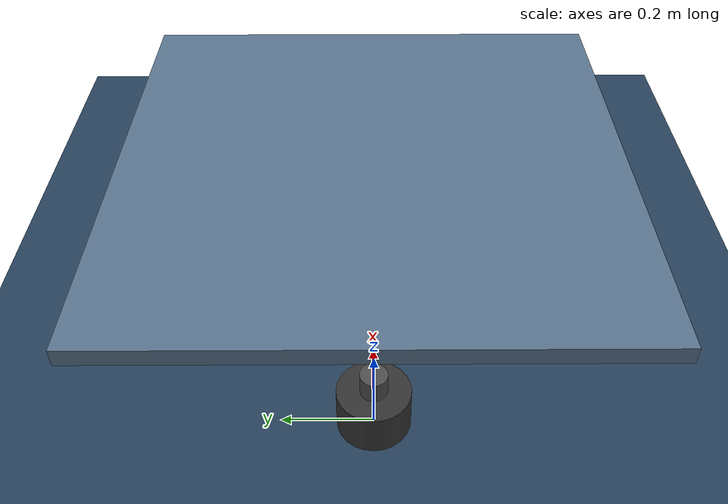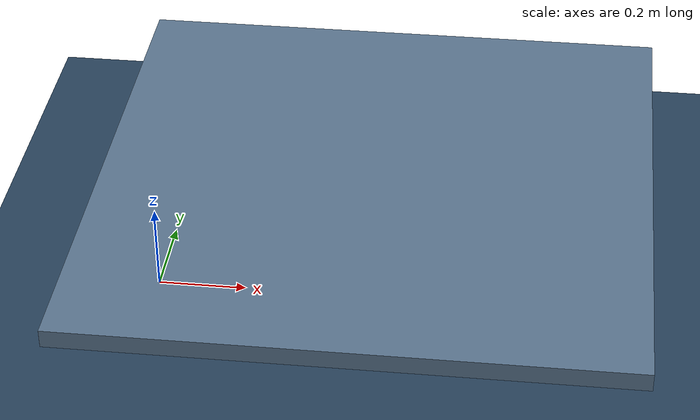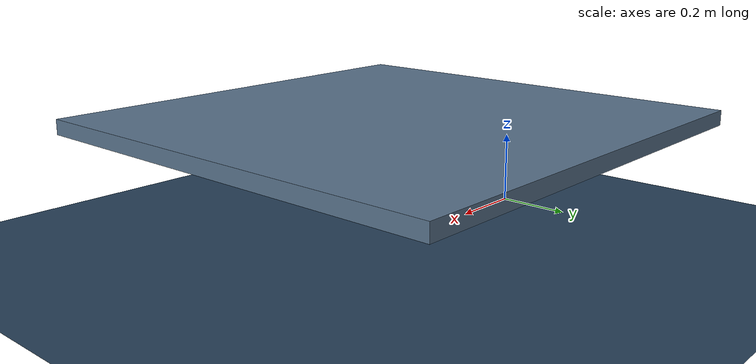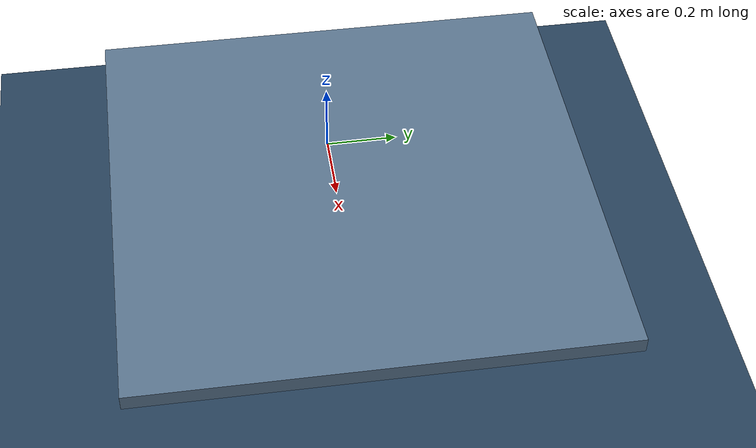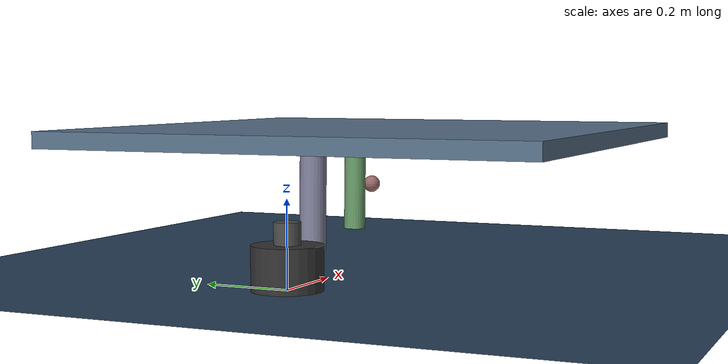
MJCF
<?xml version="1.0" encoding="UTF-8"?>
<mujoco model="arm_3dof">

    <option timestep="0.001" gravity="0 0 -9.81"/>

    <asset>
        <!-- Textures for visualization -->
        <texture type="skybox" builtin="gradient" rgb1=".4 .6 .8" rgb2="0 0 0" width="32" height="32"/>
        <texture name="texplane" type="2d" builtin="checker" rgb1=".2 .3 .4" rgb2=".1 .2 .3" width="512" height="512" mark="edge" markrgb=".8 .8 .8"/>
        <texture name="table" type="2d" builtin="checker" rgb1=".4 .5 .6" rgb2=".3 .4 .5" width="256" height="256"/>

        <!-- Materials -->
        <material name="MatPlane" texture="texplane" shininess="0.3"/>
        <material name="MatTable" texture="table" shininess="0.5"/>
        <material name="MatBase" rgba=".3 .3 .3 1"/>
        <material name="MatLink1" rgba=".5 .5 .6 1"/>
        <material name="MatLink2" rgba=".4 .6 .4 1"/>
        <material name="MatLink3" rgba=".6 .4 .4 1"/>
    </asset>

    <worldbody>
        <!-- Ground plane -->
        <geom name="ground" type="plane" size="2 2 0.1" material="MatPlane" condim="3"/>

        <!-- Work table (optional) -->
        <body name="table" pos="0.5 0 0.32">
            <geom name="table_top" type="box" size="0.6 0.6 0.02" material="MatTable"/>
        </body>

        <!-- Robot base (fixed to world) -->
        <body name="base" pos="0 0 0">
            <!-- Base link (revolute joint 1 attaches here) -->
            <geom name="base_geom" type="cylinder" size="0.08 0.05" rgba=".2 .2 .2 1" pos="0 0 .05"/>

            <!-- Joint 1: Azimuth (base rotation about Z) -->
            <joint name="joint_1" type="hinge" axis="0 0 1" pos="0 0 0.10" range="-3.14159 3.14159" damping="0.05"/>

            <!-- Link 1 (base assembly, includes motor) -->
            <body name="link_1" pos="0 0 0.10">
                <inertial pos="0 0 0" mass="0.50" diaginv="0.01 0.01 0.001"/>
                <geom name="link_1_geom" type="cylinder" size="0.03 0.05" material="MatBase"/>

                <!-- Joint 2: Shoulder elevation about Y -->
                <joint name="joint_2" type="hinge" axis="0 1 0" pos="0 0 0.10" range="-1.5708 1.5708" damping="0.05"/>

                <!-- Link 2 (upper arm) -->
                <body name="link_2" pos="0 0 0.10">
                    <!-- COM at midpoint of link -->
                    <inertial pos="0.125 0 0" mass="0.40" diaginv="0.02 0.0008 0.02"/>

                    <!-- Body cylinder from joint to next joint -->
                    <geom name="link_2_geom" type="cylinder" size="0.03 0.125" material="MatLink1" pos="0.125 0 0" axisangle="0 1 0 1.5708"/>

                    <!-- Joint 3: Elbow elevation about Y -->
                    <joint name="joint_3" type="hinge" axis="0 1 0" pos="0.25 0 0" range="-2.0944 2.0944" damping="0.03"/>

                    <!-- Link 3 (forearm) -->
                    <body name="link_3" pos="0.25 0 0">
                        <!-- COM at midpoint -->
                        <inertial pos="0.10 0 0" mass="0.20" diaginv="0.012 0.0003 0.012"/>

                        <!-- Forearm cylinder -->
                        <geom name="link_3_geom" type="cylinder" size="0.025 0.10" material="MatLink2" pos="0.10 0 0" axisangle="0 1 0 1.5708"/>

                        <!-- End effector / Gripper site (no collision) -->
                        <site name="ee_site" pos="0.20 0 0" size="0.01" rgba="1 0 0 0.5"/>

                        <!-- Collision sphere at EE for end-effector contacts (optional) -->
                        <geom name="link_3_tip" type="sphere" size="0.02" pos="0.20 0 0" material="MatLink3" contype="0" conaffinity="0"/>
                    </body>
                </body>
            </body>
        </body>

        <!-- Overhead camera for SmolVLA RGB input (224x224) -->
        <camera name="cam_overhead" mode="fixed" pos="0 0 1.0" xyaxes="1 0 0 0 1 0" fovy="60"/>

        <!-- Side camera for visualization -->
        <camera name="cam_side" mode="fixed" pos="0.8 0.8 0.5" xyaxes="1 0 0 0 1 0" fovy="60"/>
    </worldbody>

    <!-- Control inputs -->
    <actuator>
        <!-- Joint torque actuators (direct torque control) -->
        <motor name="torque_1" joint="joint_1" ctrlrange="-5.0 5.0" ctrllimited="true"/>
        <motor name="torque_2" joint="joint_2" ctrlrange="-4.0 4.0" ctrllimited="true"/>
        <motor name="torque_3" joint="joint_3" ctrlrange="-3.0 3.0" ctrllimited="true"/>
    </actuator>

    <!-- Sensors for state feedback -->
    <sensor>
        <!-- Joint positions -->
        <qpos name="joint_1_pos" joint="joint_1"/>
        <qpos name="joint_2_pos" joint="joint_2"/>
        <qpos name="joint_3_pos" joint="joint_3"/>

        <!-- Joint velocities -->
        <qvel name="joint_1_vel" joint="joint_1"/>
        <qvel name="joint_2_vel" joint="joint_2"/>
        <qvel name="joint_3_vel" joint="joint_3"/>

        <!-- End-effector position (from site) -->
        <framepos name="ee_pos_x" objtype="site" objname="ee_site"/>

        <!-- Joint accelerations (computed, useful for diagnostics) -->
        <subtreelinvel name="link_2_vel" body="link_2"/>
        <subtreelinvel name="link_3_vel" body="link_3"/>
    </sensor>

</mujoco>
